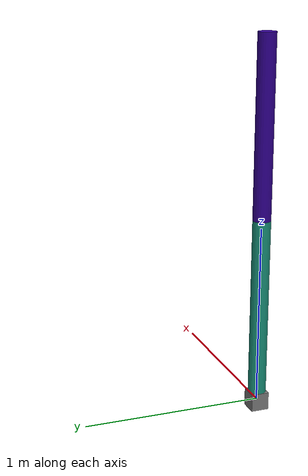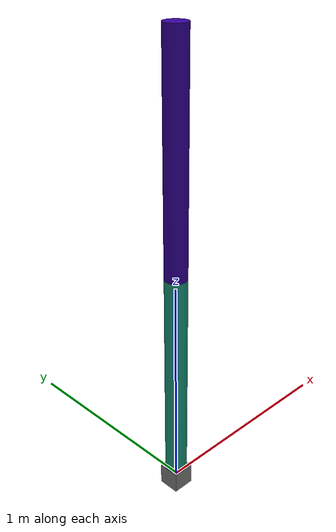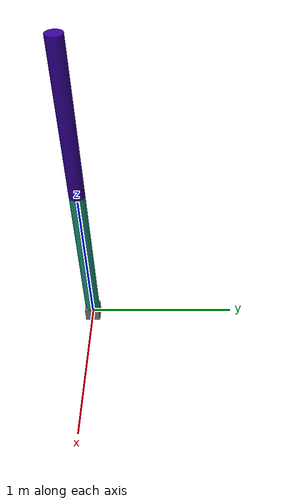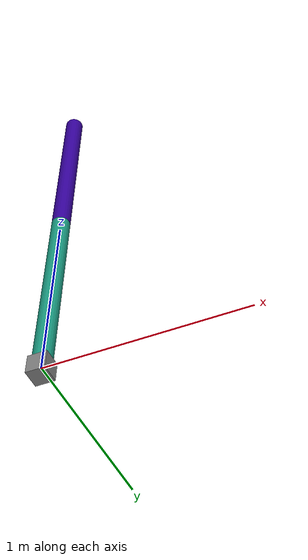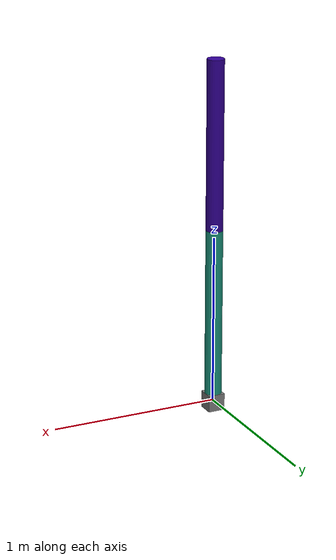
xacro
<?xml version="1.0"?>
<robot xmlns:xacro="http://www.ros.org/wiki/xacro" name="rrbot">

  <xacro:property name="base_link_x" value="0.1" />
  <xacro:property name="base_link_y" value="0.1" />
  <xacro:property name="base_link_z" value="0.1" />

  <xacro:property name="link1_length" value="1.0" />
  <xacro:property name="link1_radius" value="0.05" />
  <xacro:property name="link2_length" value="1.0" />
  <xacro:property name="link2_radius" value="0.05" />

  <link name="base_link">
    <visual>
      <geometry>
        <box size="${base_link_x} ${base_link_y} ${base_link_z}"/>
      </geometry>
      <material name="grey">
        <color rgba="0.5 0.5 0.5 1.0"/>
      </material>
    </visual>
  </link>

  <link name="link1">
    <visual>
      <geometry>
        <cylinder length="${link1_length}" radius="${link1_radius}"/>
      </geometry>
      <origin xyz="0 0 ${link1_length/2}" rpy="0 0 0"/>
      <material name="blue">
        <color rgba="0.1 0.6 0.5 1.0"/>
      </material>
    </visual>
  </link>

  <link name="link2">
    <visual>
      <geometry>
        <cylinder length="${link2_length}" radius="${link2_radius}"/>
      </geometry>
      <origin xyz="0 0 ${link2_length/2}" rpy="0 0 0"/>
      <material name="green">
        <color rgba="0.2 0. 0.6 1.0"/>
      </material>
    </visual>
  </link>

  <joint name="joint1" type="continuous">
    <parent link="base_link"/>
    <child link="link1"/>
    <origin xyz="0 0 ${base_link_z / 2}" rpy="0 0 0"/>
    <axis xyz="0 1 0"/>
  </joint>

  <joint name="joint2" type="continuous">
    <parent link="link1"/>
    <child link="link2"/>
    <origin xyz="0 0 ${link1_length}" rpy="0 0 0"/>
    <axis xyz="1 0 0"/>
  </joint>

</robot>
